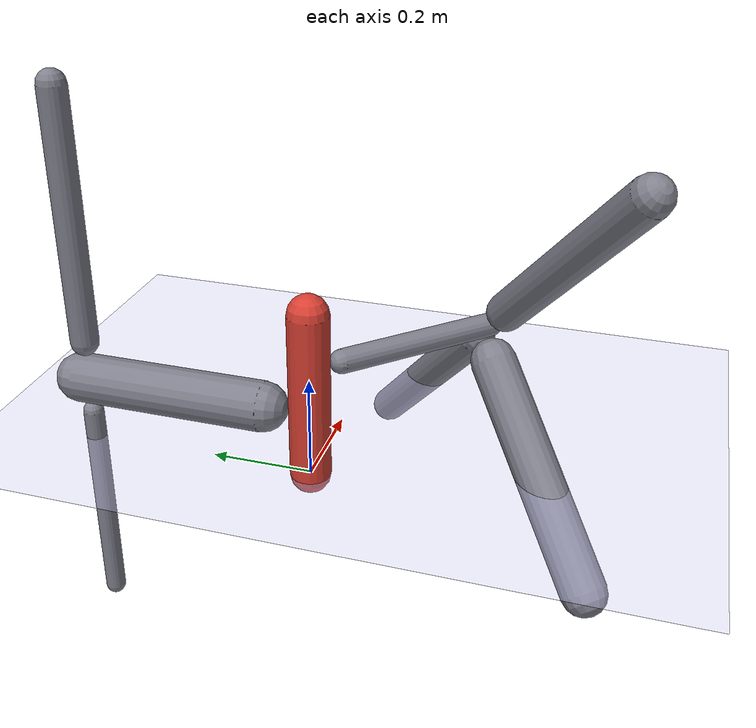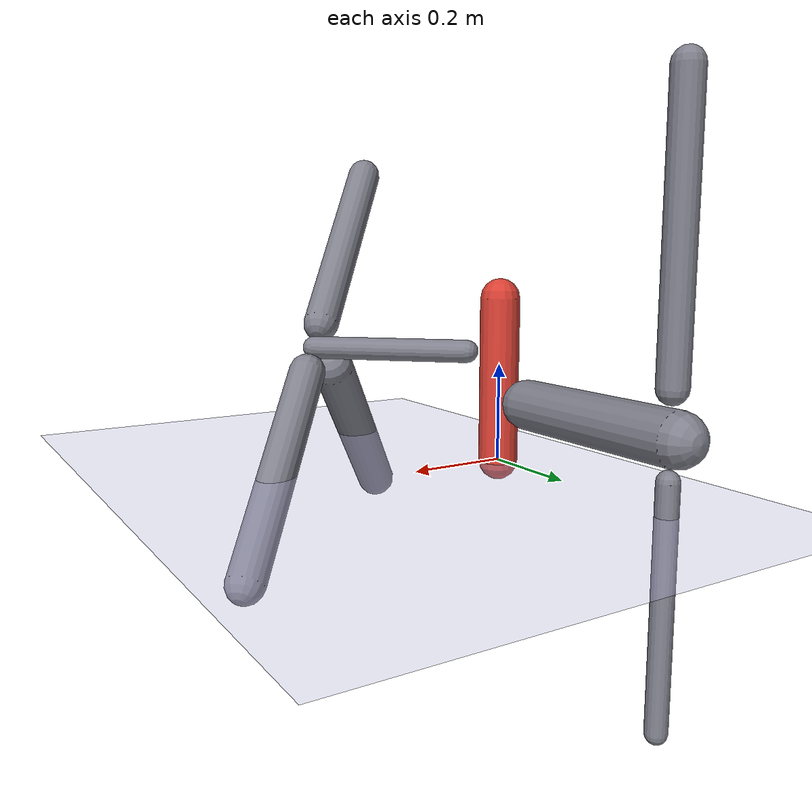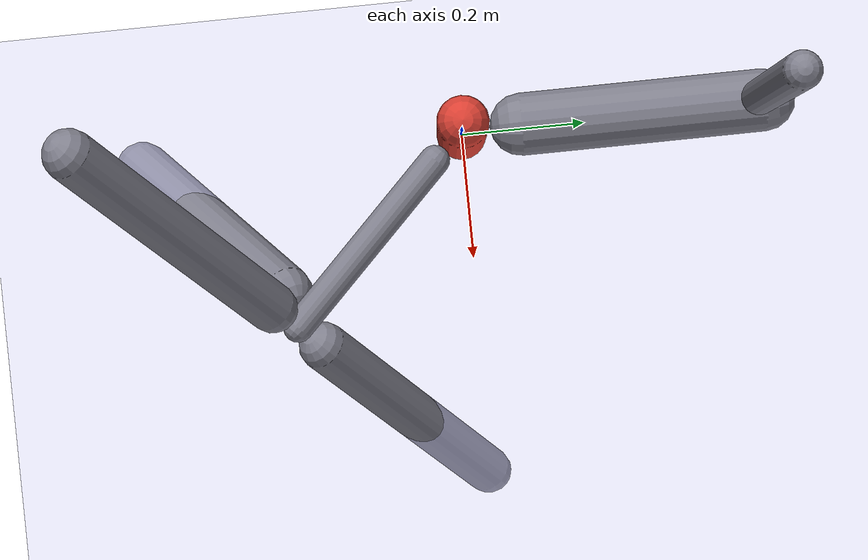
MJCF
<?xml version='1.0' encoding='UTF-8'?>
<mujoco model="robot_model">
  <worldbody>
    <light name="light" pos="0 -3 10" dir="0 0.5 -1" diffuse=".8 .8 .8" specular="0.1 0.1 0.1"/>
    <geom name="floor" type="plane" size="10.0 10.0 0.1" pos="0 0 0" rgba="0.8 0.8 1 1" contype="2" conaffinity="1"/>
    <body name="limb0" pos="0 0 0">
      <geom name="limb0_geom" type="capsule" fromto="0 0 0 0 0 0.33551884086938305" size="0.04" density="546.1146363404381" rgba="0.85 0.25 0.2 1" contype="1" conaffinity="2"/>
      <site type="sphere" size="0.01" name="limb0_site0" pos="0.047821717754763564 -0.047821717754763585 0.22546694252208022" quat="0.7071067811865476 0.5000000000000001 0.49999999999999983 0.0"/>
      <site type="sphere" size="0.01" name="limb0_site1" pos="5.717835667706295e-18 0.09337934287154917 0.13055777398211596" quat="0.7071067811865476 -0.7071067811865475 4.329780281177466e-17 0.0"/>
      <freejoint name="limb0_root"/>
      <body name="limb1" pos="0.047821717754763564 -0.047821717754763585 0.22546694252208022" quat="0.7071067811865476 0.5000000000000001 0.49999999999999983 0.0">
        <geom name="limb1_geom" type="capsule" fromto="0 0 0 0 0 0.3321329543947403" size="0.023630121824764875" density="638.956906255138" rgba="0.5 0.5 0.55 1" contype="1" conaffinity="2"/>
        <site type="sphere" size="0.01" name="limb1_site0" pos="-1.3372123139958194e-17 -0.07279444788635324 0.30727135170679837" quat="0.7071067811865476 0.7071067811865475 -1.2989340843532398e-16 0.0"/>
        <site type="sphere" size="0.01" name="limb1_site1" pos="0.06590570821408245 0.0 0.3321329543947403" quat="0.7071067811865476 -0.0 0.7071067811865475 0.0"/>
        <site type="sphere" size="0.01" name="limb1_site2" pos="-0.06590570821408245 8.07112146099155e-18 0.3321329543947403" quat="0.7071067811865476 -8.659560562354932e-17 -0.7071067811865475 0.0"/>
        <body name="limb2" pos="-1.3372123139958194e-17 -0.07279444788635324 0.30727135170679837" quat="0.7071067811865476 0.7071067811865475 -1.2989340843532398e-16 0.0">
          <geom name="limb2_geom" type="capsule" fromto="0 0 0 0 0 0.470861821227147" size="0.045164326061588364" density="752.3017237726272" rgba="0.5 0.5 0.55 1" contype="1" conaffinity="2"/>
          <joint name="joint_limb1_limb2_0" type="hinge" axis="1 0 0" range="-62.522862484907556 62.522862484907556" damping="1.1443977256658364"/>
        </body>
        <body name="limb3" pos="0.06590570821408245 0.0 0.3321329543947403" quat="0.7071067811865476 -0.0 0.7071067811865475 0.0">
          <geom name="limb3_geom" type="capsule" fromto="0 0 0 0 0 0.482020453298788" size="0.03827558638931758" density="889.3549065706504" rgba="0.5 0.5 0.55 1" contype="1" conaffinity="2"/>
          <joint name="joint_limb1_limb3_0" type="hinge" axis="1 0 0" range="-53.63992840341266 53.63992840341266" damping="0.9013164214237266"/>
        </body>
        <body name="limb4" pos="-0.06590570821408245 8.07112146099155e-18 0.3321329543947403" quat="0.7071067811865476 -8.659560562354932e-17 -0.7071067811865475 0.0">
          <geom name="limb4_geom" type="capsule" fromto="0 0 0 0 0 0.482020453298788" size="0.03827558638931758" density="889.3549065706504" rgba="0.5 0.5 0.55 1" contype="1" conaffinity="2"/>
          <joint name="joint_limb1_limb4_0" type="hinge" axis="1 0 0" range="-53.63992840341266 53.63992840341266" damping="0.9013164214237266"/>
        </body>
        <joint name="joint_limb0_limb1_0" type="hinge" axis="1 0 0" range="-114.21131105064978 114.21131105064978" damping="2.400385513215936"/>
      </body>
      <body name="limb5" pos="5.717835667706295e-18 0.09337934287154917 0.13055777398211596" quat="0.7071067811865476 -0.7071067811865475 4.329780281177466e-17 0.0">
        <geom name="limb5_geom" type="capsule" fromto="0 0 0 0 0 0.38445715119589996" size="0.04937934287154917" density="1145.6477492907027" rgba="0.5 0.5 0.55 1" contype="1" conaffinity="2"/>
        <site type="sphere" size="0.01" name="limb5_site0" pos="4.529208927165191e-18 0.07396759507016396 0.36800629874894675" quat="0.7071067811865476 -0.7071067811865475 4.329780281177466e-17 0.0"/>
        <site type="sphere" size="0.01" name="limb5_site1" pos="-1.4928304986354857e-17 -0.08126590728988704 0.36800629874894675" quat="0.7071067811865476 0.7071067811865475 -1.2989340843532398e-16 0.0"/>
        <body name="limb6" pos="4.529208927165191e-18 0.07396759507016396 0.36800629874894675" quat="0.7071067811865476 -0.7071067811865475 4.329780281177466e-17 0.0">
          <geom name="limb6_geom" type="capsule" fromto="0 0 0 0 0 0.4454560360982303" size="0.020588252198614772" density="1184.9560320530754" rgba="0.5 0.5 0.55 1" contype="1" conaffinity="2"/>
          <joint name="joint_limb5_limb6_0" type="hinge" axis="0 0 1" range="-107.10981394243396 107.10981394243396" damping="0.4663874587154333"/>
        </body>
        <body name="limb7" pos="-1.4928304986354857e-17 -0.08126590728988704 0.36800629874894675" quat="0.7071067811865476 0.7071067811865475 -1.2989340843532398e-16 0.0">
          <geom name="limb7_geom" type="capsule" fromto="0 0 0 0 0 0.5" size="0.027886564418337867" density="1194.061818199378" rgba="0.5 0.5 0.55 1" contype="1" conaffinity="2"/>
          <joint name="joint_limb5_limb7_0" type="hinge" axis="0 0 1" range="-107.10981394243396 107.10981394243396" damping="0.9794183780948128"/>
        </body>
        <joint name="joint_limb0_limb5_0" type="hinge" axis="1 0 0" range="-120.0 120.0" damping="3.9156523372724634"/>
      </body>
    </body>
  </worldbody>
  <actuator>
    <position name="position_actuator_joint_limb0_limb1_0" joint="joint_limb0_limb1_0" gear="1.047665252367243" inheritrange="1" forcerange="-36.65881647279477 36.65881647279477" forcelimited="true" kp="100.0"/>
    <position name="position_actuator_joint_limb1_limb2_0" joint="joint_limb1_limb2_0" gear="1.4303201780230668" inheritrange="1" forcerange="-12.801583793609945 12.801583793609945" forcelimited="true" kp="100.0"/>
    <position name="position_actuator_joint_limb1_limb3_0" joint="joint_limb1_limb3_0" gear="1.3218644057568048" inheritrange="1" forcerange="-10.90963844701088 10.90963844701088" forcelimited="true" kp="100.0"/>
    <position name="position_actuator_joint_limb1_limb4_0" joint="joint_limb1_limb4_0" gear="1.3218644057568048" inheritrange="1" forcerange="-10.90963844701088 10.90963844701088" forcelimited="true" kp="100.0"/>
    <position name="position_actuator_joint_limb0_limb5_0" joint="joint_limb0_limb5_0" gear="2.0" inheritrange="1" forcerange="-31.325218698179707 31.325218698179707" forcelimited="true" kp="100.0"/>
    <position name="position_actuator_joint_limb5_limb6_0" joint="joint_limb5_limb6_0" gear="2.0" inheritrange="1" forcerange="-3.7310996697234664 3.7310996697234664" forcelimited="true" kp="100.0"/>
    <position name="position_actuator_joint_limb5_limb7_0" joint="joint_limb5_limb7_0" gear="2.0" inheritrange="1" forcerange="-7.835347024758502 7.835347024758502" forcelimited="true" kp="100.0"/>
  </actuator>
  <contact>
    <pair geom1="limb0_geom" geom2="limb1_geom"/>
    <pair geom1="limb1_geom" geom2="limb2_geom"/>
    <pair geom1="limb1_geom" geom2="limb3_geom"/>
    <pair geom1="limb1_geom" geom2="limb4_geom"/>
    <pair geom1="limb0_geom" geom2="limb5_geom"/>
    <pair geom1="limb5_geom" geom2="limb6_geom"/>
    <pair geom1="limb5_geom" geom2="limb7_geom"/>
  </contact>
</mujoco>
